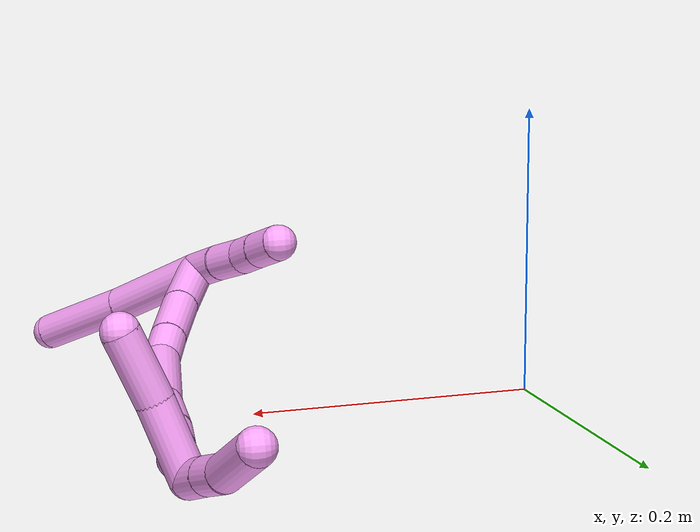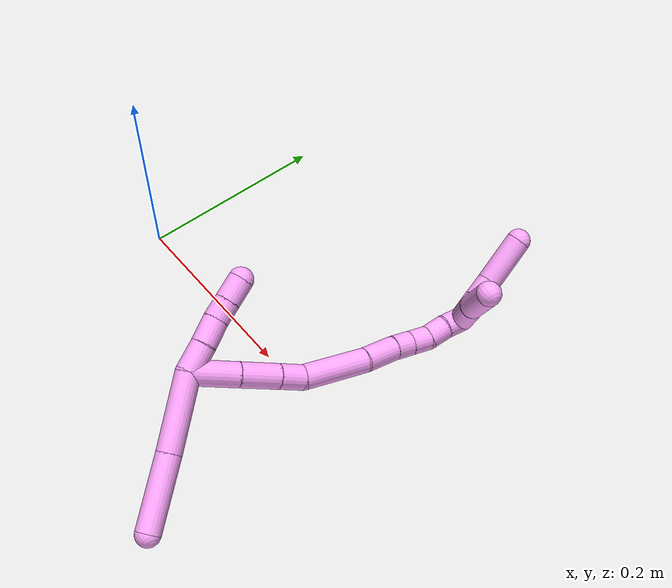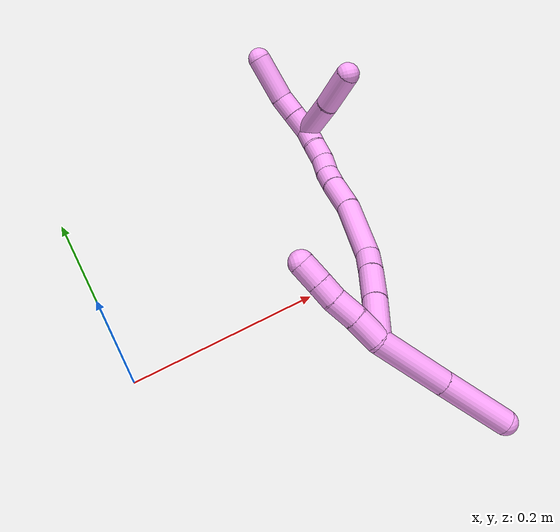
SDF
<sdf version="1.7">
 <world name="default">
  <model name="4">
   <static>0</static>
   <link name="4">
    <collision name="collision-cylinder-e_1_2_8">
     <pose>0.014723 -0.023016 0.026449 0.716113 0.39755 0.150464</pose>
     <geometry><cylinder><radius>0.0125</radius><length>0.076054</length></cylinder></geometry>
     <surface>
      <friction><ode><mu>1.16</mu><mu2>1.16</mu2><slip1>0</slip1><slip2>0</slip2></ode></friction>
      <contact><ode><kp>1e+06</kp><kd>1</kd><max_vel>0</max_vel><min_depth>0.001</min_depth></ode></contact>
     </surface>
    </collision>
    <visual name="visual-cylinder-e_1_2_8">
     <pose>0.014723 -0.023016 0.026449 0.716113 0.39755 0.150464</pose>
     <geometry><cylinder><radius>0.0125</radius><length>0.076054</length></cylinder></geometry>
     <material><ambient>1 0.65098 0.996078 1</ambient></material>
    </visual>
    <collision name="collision-cylinder-e_2_8_6">
     <pose>0.042234 -0.06913 0.078782 0.728564 0.353205 0.135885</pose>
     <geometry><cylinder><radius>0.0125</radius><length>0.073946</length></cylinder></geometry>
     <surface>
      <friction><ode><mu>1.16</mu><mu2>1.16</mu2><slip1>0</slip1><slip2>0</slip2></ode></friction>
      <contact><ode><kp>1e+06</kp><kd>1</kd><max_vel>0</max_vel><min_depth>0.001</min_depth></ode></contact>
     </surface>
    </collision>
    <visual name="visual-cylinder-e_2_8_6">
     <pose>0.042234 -0.06913 0.078782 0.728564 0.353205 0.135885</pose>
     <geometry><cylinder><radius>0.0125</radius><length>0.073946</length></cylinder></geometry>
     <material><ambient>1 0.65098 0.996078 1</ambient></material>
    </visual>
    <collision name="collision-cylinder-e_1_2_9">
     <pose>-0.004463 0.01161 -0.007521 -2.14565 -0.31206 0.563307</pose>
     <geometry><cylinder><radius>0.0125</radius><length>0.029071</length></cylinder></geometry>
     <surface>
      <friction><ode><mu>1.16</mu><mu2>1.16</mu2><slip1>0</slip1><slip2>0</slip2></ode></friction>
      <contact><ode><kp>1e+06</kp><kd>1</kd><max_vel>0</max_vel><min_depth>0.001</min_depth></ode></contact>
     </surface>
    </collision>
    <visual name="visual-cylinder-e_1_2_9">
     <pose>-0.004463 0.01161 -0.007521 -2.14565 -0.31206 0.563307</pose>
     <geometry><cylinder><radius>0.0125</radius><length>0.029071</length></cylinder></geometry>
     <material><ambient>1 0.65098 0.996078 1</ambient></material>
    </visual>
    <collision name="collision-cylinder-e_2_9_10">
     <pose>-0.012415 0.033284 -0.022721 -2.22255 -0.268973 0.533796</pose>
     <geometry><cylinder><radius>0.0125</radius><length>0.02626</length></cylinder></geometry>
     <surface>
      <friction><ode><mu>1.16</mu><mu2>1.16</mu2><slip1>0</slip1><slip2>0</slip2></ode></friction>
      <contact><ode><kp>1e+06</kp><kd>1</kd><max_vel>0</max_vel><min_depth>0.001</min_depth></ode></contact>
     </surface>
    </collision>
    <visual name="visual-cylinder-e_2_9_10">
     <pose>-0.012415 0.033284 -0.022721 -2.22255 -0.268973 0.533796</pose>
     <geometry><cylinder><radius>0.0125</radius><length>0.02626</length></cylinder></geometry>
     <material><ambient>1 0.65098 0.996078 1</ambient></material>
    </visual>
    <collision name="collision-cylinder-e_3_10_11">
     <pose>-0.019154 0.051841 -0.035167 -2.08232 -0.322054 0.541303</pose>
     <geometry><cylinder><radius>0.0125</radius><length>0.020537</length></cylinder></geometry>
     <surface>
      <friction><ode><mu>1.16</mu><mu2>1.16</mu2><slip1>0</slip1><slip2>0</slip2></ode></friction>
      <contact><ode><kp>1e+06</kp><kd>1</kd><max_vel>0</max_vel><min_depth>0.001</min_depth></ode></contact>
     </surface>
    </collision>
    <visual name="visual-cylinder-e_3_10_11">
     <pose>-0.019154 0.051841 -0.035167 -2.08232 -0.322054 0.541303</pose>
     <geometry><cylinder><radius>0.0125</radius><length>0.020537</length></cylinder></geometry>
     <material><ambient>1 0.65098 0.996078 1</ambient></material>
    </visual>
    <collision name="collision-cylinder-e_4_11_5">
     <pose>-0.026076 0.070293 -0.045674 -2.09357 -0.309232 0.526867</pose>
     <geometry><cylinder><radius>0.0125</radius><length>0.024132</length></cylinder></geometry>
     <surface>
      <friction><ode><mu>1.16</mu><mu2>1.16</mu2><slip1>0</slip1><slip2>0</slip2></ode></friction>
      <contact><ode><kp>1e+06</kp><kd>1</kd><max_vel>0</max_vel><min_depth>0.001</min_depth></ode></contact>
     </surface>
    </collision>
    <visual name="visual-cylinder-e_4_11_5">
     <pose>-0.026076 0.070293 -0.045674 -2.09357 -0.309232 0.526867</pose>
     <geometry><cylinder><radius>0.0125</radius><length>0.024132</length></cylinder></geometry>
     <material><ambient>1 0.65098 0.996078 1</ambient></material>
    </visual>
    <collision name="collision-cylinder-e_1_2_12">
     <pose>0.007954 0.021461 0.007671 -1.22753 0.33578 -0.237691</pose>
     <geometry><cylinder><radius>0.0125</radius><length>0.048278</length></cylinder></geometry>
     <surface>
      <friction><ode><mu>1.16</mu><mu2>1.16</mu2><slip1>0</slip1><slip2>0</slip2></ode></friction>
      <contact><ode><kp>1e+06</kp><kd>1</kd><max_vel>0</max_vel><min_depth>0.001</min_depth></ode></contact>
     </surface>
    </collision>
    <visual name="visual-cylinder-e_1_2_12">
     <pose>0.007954 0.021461 0.007671 -1.22753 0.33578 -0.237691</pose>
     <geometry><cylinder><radius>0.0125</radius><length>0.048278</length></cylinder></geometry>
     <material><ambient>1 0.65098 0.996078 1</ambient></material>
    </visual>
    <collision name="collision-cylinder-e_2_12_13">
     <pose>0.023183 0.060384 0.021004 -1.25721 0.377343 -0.27586</pose>
     <geometry><cylinder><radius>0.0125</radius><length>0.039491</length></cylinder></geometry>
     <surface>
      <friction><ode><mu>1.16</mu><mu2>1.16</mu2><slip1>0</slip1><slip2>0</slip2></ode></friction>
      <contact><ode><kp>1e+06</kp><kd>1</kd><max_vel>0</max_vel><min_depth>0.001</min_depth></ode></contact>
     </surface>
    </collision>
    <visual name="visual-cylinder-e_2_12_13">
     <pose>0.023183 0.060384 0.021004 -1.25721 0.377343 -0.27586</pose>
     <geometry><cylinder><radius>0.0125</radius><length>0.039491</length></cylinder></geometry>
     <material><ambient>1 0.65098 0.996078 1</ambient></material>
    </visual>
    <collision name="collision-cylinder-e_3_13_14">
     <pose>0.035676 0.088966 0.029944 -1.2842 0.422847 -0.318292</pose>
     <geometry><cylinder><radius>0.0125</radius><length>0.025428</length></cylinder></geometry>
     <surface>
      <friction><ode><mu>1.16</mu><mu2>1.16</mu2><slip1>0</slip1><slip2>0</slip2></ode></friction>
      <contact><ode><kp>1e+06</kp><kd>1</kd><max_vel>0</max_vel><min_depth>0.001</min_depth></ode></contact>
     </surface>
    </collision>
    <visual name="visual-cylinder-e_3_13_14">
     <pose>0.035676 0.088966 0.029944 -1.2842 0.422847 -0.318292</pose>
     <geometry><cylinder><radius>0.0125</radius><length>0.025428</length></cylinder></geometry>
     <material><ambient>1 0.65098 0.996078 1</ambient></material>
    </visual>
    <collision name="collision-cylinder-e_4_14_15">
     <pose>0.048006 0.132818 0.03507 -1.51438 0.213668 -0.202023</pose>
     <geometry><cylinder><radius>0.0125</radius><length>0.067092</length></cylinder></geometry>
     <surface>
      <friction><ode><mu>1.16</mu><mu2>1.16</mu2><slip1>0</slip1><slip2>0</slip2></ode></friction>
      <contact><ode><kp>1e+06</kp><kd>1</kd><max_vel>0</max_vel><min_depth>0.001</min_depth></ode></contact>
     </surface>
    </collision>
    <visual name="visual-cylinder-e_4_14_15">
     <pose>0.048006 0.132818 0.03507 -1.51438 0.213668 -0.202023</pose>
     <geometry><cylinder><radius>0.0125</radius><length>0.067092</length></cylinder></geometry>
     <material><ambient>1 0.65098 0.996078 1</ambient></material>
    </visual>
    <collision name="collision-cylinder-e_5_15_16">
     <pose>0.059699 0.182577 0.035178 -1.67268 0.261409 -0.289127</pose>
     <geometry><cylinder><radius>0.0125</radius><length>0.035438</length></cylinder></geometry>
     <surface>
      <friction><ode><mu>1.16</mu><mu2>1.16</mu2><slip1>0</slip1><slip2>0</slip2></ode></friction>
      <contact><ode><kp>1e+06</kp><kd>1</kd><max_vel>0</max_vel><min_depth>0.001</min_depth></ode></contact>
     </surface>
    </collision>
    <visual name="visual-cylinder-e_5_15_16">
     <pose>0.059699 0.182577 0.035178 -1.67268 0.261409 -0.289127</pose>
     <geometry><cylinder><radius>0.0125</radius><length>0.035438</length></cylinder></geometry>
     <material><ambient>1 0.65098 0.996078 1</ambient></material>
    </visual>
    <collision name="collision-cylinder-e_6_16_17">
     <pose>0.067324 0.209427 0.033289 -1.58588 0.300668 -0.305169</pose>
     <geometry><cylinder><radius>0.0125</radius><length>0.020567</length></cylinder></geometry>
     <surface>
      <friction><ode><mu>1.16</mu><mu2>1.16</mu2><slip1>0</slip1><slip2>0</slip2></ode></friction>
      <contact><ode><kp>1e+06</kp><kd>1</kd><max_vel>0</max_vel><min_depth>0.001</min_depth></ode></contact>
     </surface>
    </collision>
    <visual name="visual-cylinder-e_6_16_17">
     <pose>0.067324 0.209427 0.033289 -1.58588 0.300668 -0.305169</pose>
     <geometry><cylinder><radius>0.0125</radius><length>0.020567</length></cylinder></geometry>
     <material><ambient>1 0.65098 0.996078 1</ambient></material>
    </visual>
    <collision name="collision-cylinder-e_7_17_18">
     <pose>0.071726 0.229365 0.033906 -1.4953 0.132916 -0.123267</pose>
     <geometry><cylinder><radius>0.0125</radius><length>0.020474</length></cylinder></geometry>
     <surface>
      <friction><ode><mu>1.16</mu><mu2>1.16</mu2><slip1>0</slip1><slip2>0</slip2></ode></friction>
      <contact><ode><kp>1e+06</kp><kd>1</kd><max_vel>0</max_vel><min_depth>0.001</min_depth></ode></contact>
     </surface>
    </collision>
    <visual name="visual-cylinder-e_7_17_18">
     <pose>0.071726 0.229365 0.033906 -1.4953 0.132916 -0.123267</pose>
     <geometry><cylinder><radius>0.0125</radius><length>0.020474</length></cylinder></geometry>
     <material><ambient>1 0.65098 0.996078 1</ambient></material>
    </visual>
    <collision name="collision-cylinder-e_8_18_19">
     <pose>0.07292 0.250091 0.033131 -1.71492 -0.015123 0.017476</pose>
     <geometry><cylinder><radius>0.0125</radius><length>0.021441</length></cylinder></geometry>
     <surface>
      <friction><ode><mu>1.16</mu><mu2>1.16</mu2><slip1>0</slip1><slip2>0</slip2></ode></friction>
      <contact><ode><kp>1e+06</kp><kd>1</kd><max_vel>0</max_vel><min_depth>0.001</min_depth></ode></contact>
     </surface>
    </collision>
    <visual name="visual-cylinder-e_8_18_19">
     <pose>0.07292 0.250091 0.033131 -1.71492 -0.015123 0.017476</pose>
     <geometry><cylinder><radius>0.0125</radius><length>0.021441</length></cylinder></geometry>
     <material><ambient>1 0.65098 0.996078 1</ambient></material>
    </visual>
    <collision name="collision-cylinder-e_9_19_1">
     <pose>0.073986 0.271503 0.030892 -1.63546 0.112917 -0.120447</pose>
     <geometry><cylinder><radius>0.0125</radius><length>0.021792</length></cylinder></geometry>
     <surface>
      <friction><ode><mu>1.16</mu><mu2>1.16</mu2><slip1>0</slip1><slip2>0</slip2></ode></friction>
      <contact><ode><kp>1e+06</kp><kd>1</kd><max_vel>0</max_vel><min_depth>0.001</min_depth></ode></contact>
     </surface>
    </collision>
    <visual name="visual-cylinder-e_9_19_1">
     <pose>0.073986 0.271503 0.030892 -1.63546 0.112917 -0.120447</pose>
     <geometry><cylinder><radius>0.0125</radius><length>0.021792</length></cylinder></geometry>
     <material><ambient>1 0.65098 0.996078 1</ambient></material>
    </visual>
    <collision name="collision-cylinder-e_1_1_20">
     <pose>0.050492 0.280783 0.038857 0.174139 -1.22892 -0.123025</pose>
     <geometry><cylinder><radius>0.0125</radius><length>0.05248</length></cylinder></geometry>
     <surface>
      <friction><ode><mu>1.16</mu><mu2>1.16</mu2><slip1>0</slip1><slip2>0</slip2></ode></friction>
      <contact><ode><kp>1e+06</kp><kd>1</kd><max_vel>0</max_vel><min_depth>0.001</min_depth></ode></contact>
     </surface>
    </collision>
    <visual name="visual-cylinder-e_1_1_20">
     <pose>0.050492 0.280783 0.038857 0.174139 -1.22892 -0.123025</pose>
     <geometry><cylinder><radius>0.0125</radius><length>0.05248</length></cylinder></geometry>
     <material><ambient>1 0.65098 0.996078 1</ambient></material>
    </visual>
    <collision name="collision-cylinder-e_2_20_4">
     <pose>0.003798 0.280585 0.056463 -0.147257 -1.1805 0.098749</pose>
     <geometry><cylinder><radius>0.0125</radius><length>0.04752</length></cylinder></geometry>
     <surface>
      <friction><ode><mu>1.16</mu><mu2>1.16</mu2><slip1>0</slip1><slip2>0</slip2></ode></friction>
      <contact><ode><kp>1e+06</kp><kd>1</kd><max_vel>0</max_vel><min_depth>0.001</min_depth></ode></contact>
     </surface>
    </collision>
    <visual name="visual-cylinder-e_2_20_4">
     <pose>0.003798 0.280585 0.056463 -0.147257 -1.1805 0.098749</pose>
     <geometry><cylinder><radius>0.0125</radius><length>0.04752</length></cylinder></geometry>
     <material><ambient>1 0.65098 0.996078 1</ambient></material>
    </visual>
    <collision name="collision-cylinder-e_1_1_21">
     <pose>0.071576 0.293171 0.025318 -1.99261 -0.296475 0.453453</pose>
     <geometry><cylinder><radius>0.0125</radius><length>0.024901</length></cylinder></geometry>
     <surface>
      <friction><ode><mu>1.16</mu><mu2>1.16</mu2><slip1>0</slip1><slip2>0</slip2></ode></friction>
      <contact><ode><kp>1e+06</kp><kd>1</kd><max_vel>0</max_vel><min_depth>0.001</min_depth></ode></contact>
     </surface>
    </collision>
    <visual name="visual-cylinder-e_1_1_21">
     <pose>0.071576 0.293171 0.025318 -1.99261 -0.296475 0.453453</pose>
     <geometry><cylinder><radius>0.0125</radius><length>0.024901</length></cylinder></geometry>
     <material><ambient>1 0.65098 0.996078 1</ambient></material>
    </visual>
    <collision name="collision-cylinder-e_2_21_22">
     <pose>0.064857 0.314264 0.015967 -1.98322 -0.269269 0.408455</pose>
     <geometry><cylinder><radius>0.0125</radius><length>0.023168</length></cylinder></geometry>
     <surface>
      <friction><ode><mu>1.16</mu><mu2>1.16</mu2><slip1>0</slip1><slip2>0</slip2></ode></friction>
      <contact><ode><kp>1e+06</kp><kd>1</kd><max_vel>0</max_vel><min_depth>0.001</min_depth></ode></contact>
     </surface>
    </collision>
    <visual name="visual-cylinder-e_2_21_22">
     <pose>0.064857 0.314264 0.015967 -1.98322 -0.269269 0.408455</pose>
     <geometry><cylinder><radius>0.0125</radius><length>0.023168</length></cylinder></geometry>
     <material><ambient>1 0.65098 0.996078 1</ambient></material>
    </visual>
    <collision name="collision-cylinder-e_3_22_3">
     <pose>0.049182 0.345736 0.003466 -1.932 -0.506369 0.716366</pose>
     <geometry><cylinder><radius>0.0125</radius><length>0.051931</length></cylinder></geometry>
     <surface>
      <friction><ode><mu>1.16</mu><mu2>1.16</mu2><slip1>0</slip1><slip2>0</slip2></ode></friction>
      <contact><ode><kp>1e+06</kp><kd>1</kd><max_vel>0</max_vel><min_depth>0.001</min_depth></ode></contact>
     </surface>
    </collision>
    <visual name="visual-cylinder-e_3_22_3">
     <pose>0.049182 0.345736 0.003466 -1.932 -0.506369 0.716366</pose>
     <geometry><cylinder><radius>0.0125</radius><length>0.051931</length></cylinder></geometry>
     <material><ambient>1 0.65098 0.996078 1</ambient></material>
    </visual>
    <collision name="collision-sphere-3">
     <pose>0.036589 0.366978 -0.004559 0 -0 0</pose>
     <geometry><sphere><radius>0.0125</radius></sphere></geometry>
     <surface>
      <friction><ode><mu>1.16</mu><mu2>1.16</mu2><slip1>0</slip1><slip2>0</slip2></ode></friction>
      <contact><ode><kp>1e+06</kp><kd>1</kd><max_vel>0</max_vel><min_depth>0.001</min_depth></ode></contact>
     </surface>
    </collision>
    <visual name="visual-sphere-3">
     <pose>0.036589 0.366978 -0.004559 0 -0 0</pose>
     <geometry><sphere><radius>0.0125</radius></sphere></geometry>
     <material><ambient>1 0.65098 0.996078 1</ambient></material>
    </visual>
    <collision name="collision-sphere-22">
     <pose>0.061776 0.324494 0.011491 0 -0 0</pose>
     <geometry><sphere><radius>0.0125</radius></sphere></geometry>
     <surface>
      <friction><ode><mu>1.16</mu><mu2>1.16</mu2><slip1>0</slip1><slip2>0</slip2></ode></friction>
      <contact><ode><kp>1e+06</kp><kd>1</kd><max_vel>0</max_vel><min_depth>0.001</min_depth></ode></contact>
     </surface>
    </collision>
    <visual name="visual-sphere-22">
     <pose>0.061776 0.324494 0.011491 0 -0 0</pose>
     <geometry><sphere><radius>0.0125</radius></sphere></geometry>
     <material><ambient>1 0.65098 0.996078 1</ambient></material>
    </visual>
    <collision name="collision-sphere-21">
     <pose>0.067939 0.304034 0.020443 0 -0 0</pose>
     <geometry><sphere><radius>0.0125</radius></sphere></geometry>
     <surface>
      <friction><ode><mu>1.16</mu><mu2>1.16</mu2><slip1>0</slip1><slip2>0</slip2></ode></friction>
      <contact><ode><kp>1e+06</kp><kd>1</kd><max_vel>0</max_vel><min_depth>0.001</min_depth></ode></contact>
     </surface>
    </collision>
    <visual name="visual-sphere-21">
     <pose>0.067939 0.304034 0.020443 0 -0 0</pose>
     <geometry><sphere><radius>0.0125</radius></sphere></geometry>
     <material><ambient>1 0.65098 0.996078 1</ambient></material>
    </visual>
    <collision name="collision-sphere-4">
     <pose>-0.018175 0.281911 0.065405 0 -0 0</pose>
     <geometry><sphere><radius>0.0125</radius></sphere></geometry>
     <surface>
      <friction><ode><mu>1.16</mu><mu2>1.16</mu2><slip1>0</slip1><slip2>0</slip2></ode></friction>
      <contact><ode><kp>1e+06</kp><kd>1</kd><max_vel>0</max_vel><min_depth>0.001</min_depth></ode></contact>
     </surface>
    </collision>
    <visual name="visual-sphere-4">
     <pose>-0.018175 0.281911 0.065405 0 -0 0</pose>
     <geometry><sphere><radius>0.0125</radius></sphere></geometry>
     <material><ambient>1 0.65098 0.996078 1</ambient></material>
    </visual>
    <collision name="collision-sphere-20">
     <pose>0.025771 0.279259 0.047521 0 -0 0</pose>
     <geometry><sphere><radius>0.0125</radius></sphere></geometry>
     <surface>
      <friction><ode><mu>1.16</mu><mu2>1.16</mu2><slip1>0</slip1><slip2>0</slip2></ode></friction>
      <contact><ode><kp>1e+06</kp><kd>1</kd><max_vel>0</max_vel><min_depth>0.001</min_depth></ode></contact>
     </surface>
    </collision>
    <visual name="visual-sphere-20">
     <pose>0.025771 0.279259 0.047521 0 -0 0</pose>
     <geometry><sphere><radius>0.0125</radius></sphere></geometry>
     <material><ambient>1 0.65098 0.996078 1</ambient></material>
    </visual>
    <collision name="collision-sphere-11">
     <pose>-0.022404 0.060334 -0.039935 0 -0 0</pose>
     <geometry><sphere><radius>0.0125</radius></sphere></geometry>
     <surface>
      <friction><ode><mu>1.16</mu><mu2>1.16</mu2><slip1>0</slip1><slip2>0</slip2></ode></friction>
      <contact><ode><kp>1e+06</kp><kd>1</kd><max_vel>0</max_vel><min_depth>0.001</min_depth></ode></contact>
     </surface>
    </collision>
    <visual name="visual-sphere-11">
     <pose>-0.022404 0.060334 -0.039935 0 -0 0</pose>
     <geometry><sphere><radius>0.0125</radius></sphere></geometry>
     <material><ambient>1 0.65098 0.996078 1</ambient></material>
    </visual>
    <collision name="collision-sphere-10">
     <pose>-0.015904 0.043347 -0.030399 0 -0 0</pose>
     <geometry><sphere><radius>0.0125</radius></sphere></geometry>
     <surface>
      <friction><ode><mu>1.16</mu><mu2>1.16</mu2><slip1>0</slip1><slip2>0</slip2></ode></friction>
      <contact><ode><kp>1e+06</kp><kd>1</kd><max_vel>0</max_vel><min_depth>0.001</min_depth></ode></contact>
     </surface>
    </collision>
    <visual name="visual-sphere-10">
     <pose>-0.015904 0.043347 -0.030399 0 -0 0</pose>
     <geometry><sphere><radius>0.0125</radius></sphere></geometry>
     <material><ambient>1 0.65098 0.996078 1</ambient></material>
    </visual>
    <collision name="collision-sphere-6">
     <pose>0.055024 -0.092227 0.104665 0 -0 0</pose>
     <geometry><sphere><radius>0.0125</radius></sphere></geometry>
     <surface>
      <friction><ode><mu>1.16</mu><mu2>1.16</mu2><slip1>0</slip1><slip2>0</slip2></ode></friction>
      <contact><ode><kp>1e+06</kp><kd>1</kd><max_vel>0</max_vel><min_depth>0.001</min_depth></ode></contact>
     </surface>
    </collision>
    <visual name="visual-sphere-6">
     <pose>0.055024 -0.092227 0.104665 0 -0 0</pose>
     <geometry><sphere><radius>0.0125</radius></sphere></geometry>
     <material><ambient>1 0.65098 0.996078 1</ambient></material>
    </visual>
    <collision name="collision-sphere-9">
     <pose>-0.008925 0.02322 -0.015043 0 -0 0</pose>
     <geometry><sphere><radius>0.0125</radius></sphere></geometry>
     <surface>
      <friction><ode><mu>1.16</mu><mu2>1.16</mu2><slip1>0</slip1><slip2>0</slip2></ode></friction>
      <contact><ode><kp>1e+06</kp><kd>1</kd><max_vel>0</max_vel><min_depth>0.001</min_depth></ode></contact>
     </surface>
    </collision>
    <visual name="visual-sphere-9">
     <pose>-0.008925 0.02322 -0.015043 0 -0 0</pose>
     <geometry><sphere><radius>0.0125</radius></sphere></geometry>
     <material><ambient>1 0.65098 0.996078 1</ambient></material>
    </visual>
    <collision name="collision-sphere-2">
     <geometry><sphere><radius>0.0125</radius></sphere></geometry>
     <surface>
      <friction><ode><mu>1.16</mu><mu2>1.16</mu2><slip1>0</slip1><slip2>0</slip2></ode></friction>
      <contact><ode><kp>1e+06</kp><kd>1</kd><max_vel>0</max_vel><min_depth>0.001</min_depth></ode></contact>
     </surface>
    </collision>
    <visual name="visual-sphere-2">
     <geometry><sphere><radius>0.0125</radius></sphere></geometry>
     <material><ambient>1 0.65098 0.996078 1</ambient></material>
    </visual>
    <collision name="collision-sphere-19">
     <pose>0.072758 0.260699 0.031592 0 -0 0</pose>
     <geometry><sphere><radius>0.0125</radius></sphere></geometry>
     <surface>
      <friction><ode><mu>1.16</mu><mu2>1.16</mu2><slip1>0</slip1><slip2>0</slip2></ode></friction>
      <contact><ode><kp>1e+06</kp><kd>1</kd><max_vel>0</max_vel><min_depth>0.001</min_depth></ode></contact>
     </surface>
    </collision>
    <visual name="visual-sphere-19">
     <pose>0.072758 0.260699 0.031592 0 -0 0</pose>
     <geometry><sphere><radius>0.0125</radius></sphere></geometry>
     <material><ambient>1 0.65098 0.996078 1</ambient></material>
    </visual>
    <collision name="collision-sphere-8">
     <pose>0.029445 -0.046033 0.052898 0 -0 0</pose>
     <geometry><sphere><radius>0.0125</radius></sphere></geometry>
     <surface>
      <friction><ode><mu>1.16</mu><mu2>1.16</mu2><slip1>0</slip1><slip2>0</slip2></ode></friction>
      <contact><ode><kp>1e+06</kp><kd>1</kd><max_vel>0</max_vel><min_depth>0.001</min_depth></ode></contact>
     </surface>
    </collision>
    <visual name="visual-sphere-8">
     <pose>0.029445 -0.046033 0.052898 0 -0 0</pose>
     <geometry><sphere><radius>0.0125</radius></sphere></geometry>
     <material><ambient>1 0.65098 0.996078 1</ambient></material>
    </visual>
    <collision name="collision-sphere-5">
     <pose>-0.029748 0.080251 -0.051412 0 -0 0</pose>
     <geometry><sphere><radius>0.0125</radius></sphere></geometry>
     <surface>
      <friction><ode><mu>1.16</mu><mu2>1.16</mu2><slip1>0</slip1><slip2>0</slip2></ode></friction>
      <contact><ode><kp>1e+06</kp><kd>1</kd><max_vel>0</max_vel><min_depth>0.001</min_depth></ode></contact>
     </surface>
    </collision>
    <visual name="visual-sphere-5">
     <pose>-0.029748 0.080251 -0.051412 0 -0 0</pose>
     <geometry><sphere><radius>0.0125</radius></sphere></geometry>
     <material><ambient>1 0.65098 0.996078 1</ambient></material>
    </visual>
    <collision name="collision-sphere-12">
     <pose>0.015908 0.042923 0.015341 0 -0 0</pose>
     <geometry><sphere><radius>0.0125</radius></sphere></geometry>
     <surface>
      <friction><ode><mu>1.16</mu><mu2>1.16</mu2><slip1>0</slip1><slip2>0</slip2></ode></friction>
      <contact><ode><kp>1e+06</kp><kd>1</kd><max_vel>0</max_vel><min_depth>0.001</min_depth></ode></contact>
     </surface>
    </collision>
    <visual name="visual-sphere-12">
     <pose>0.015908 0.042923 0.015341 0 -0 0</pose>
     <geometry><sphere><radius>0.0125</radius></sphere></geometry>
     <material><ambient>1 0.65098 0.996078 1</ambient></material>
    </visual>
    <collision name="collision-sphere-13">
     <pose>0.030458 0.077845 0.026666 0 -0 0</pose>
     <geometry><sphere><radius>0.0125</radius></sphere></geometry>
     <surface>
      <friction><ode><mu>1.16</mu><mu2>1.16</mu2><slip1>0</slip1><slip2>0</slip2></ode></friction>
      <contact><ode><kp>1e+06</kp><kd>1</kd><max_vel>0</max_vel><min_depth>0.001</min_depth></ode></contact>
     </surface>
    </collision>
    <visual name="visual-sphere-13">
     <pose>0.030458 0.077845 0.026666 0 -0 0</pose>
     <geometry><sphere><radius>0.0125</radius></sphere></geometry>
     <material><ambient>1 0.65098 0.996078 1</ambient></material>
    </visual>
    <collision name="collision-sphere-14">
     <pose>0.040893 0.100087 0.033221 0 -0 0</pose>
     <geometry><sphere><radius>0.0125</radius></sphere></geometry>
     <surface>
      <friction><ode><mu>1.16</mu><mu2>1.16</mu2><slip1>0</slip1><slip2>0</slip2></ode></friction>
      <contact><ode><kp>1e+06</kp><kd>1</kd><max_vel>0</max_vel><min_depth>0.001</min_depth></ode></contact>
     </surface>
    </collision>
    <visual name="visual-sphere-14">
     <pose>0.040893 0.100087 0.033221 0 -0 0</pose>
     <geometry><sphere><radius>0.0125</radius></sphere></geometry>
     <material><ambient>1 0.65098 0.996078 1</ambient></material>
    </visual>
    <collision name="collision-sphere-15">
     <pose>0.05512 0.165549 0.036919 0 -0 0</pose>
     <geometry><sphere><radius>0.0125</radius></sphere></geometry>
     <surface>
      <friction><ode><mu>1.16</mu><mu2>1.16</mu2><slip1>0</slip1><slip2>0</slip2></ode></friction>
      <contact><ode><kp>1e+06</kp><kd>1</kd><max_vel>0</max_vel><min_depth>0.001</min_depth></ode></contact>
     </surface>
    </collision>
    <visual name="visual-sphere-15">
     <pose>0.05512 0.165549 0.036919 0 -0 0</pose>
     <geometry><sphere><radius>0.0125</radius></sphere></geometry>
     <material><ambient>1 0.65098 0.996078 1</ambient></material>
    </visual>
    <collision name="collision-sphere-16">
     <pose>0.064278 0.199606 0.033437 0 -0 0</pose>
     <geometry><sphere><radius>0.0125</radius></sphere></geometry>
     <surface>
      <friction><ode><mu>1.16</mu><mu2>1.16</mu2><slip1>0</slip1><slip2>0</slip2></ode></friction>
      <contact><ode><kp>1e+06</kp><kd>1</kd><max_vel>0</max_vel><min_depth>0.001</min_depth></ode></contact>
     </surface>
    </collision>
    <visual name="visual-sphere-16">
     <pose>0.064278 0.199606 0.033437 0 -0 0</pose>
     <geometry><sphere><radius>0.0125</radius></sphere></geometry>
     <material><ambient>1 0.65098 0.996078 1</ambient></material>
    </visual>
    <collision name="collision-sphere-17">
     <pose>0.070369 0.219248 0.03314 0 -0 0</pose>
     <geometry><sphere><radius>0.0125</radius></sphere></geometry>
     <surface>
      <friction><ode><mu>1.16</mu><mu2>1.16</mu2><slip1>0</slip1><slip2>0</slip2></ode></friction>
      <contact><ode><kp>1e+06</kp><kd>1</kd><max_vel>0</max_vel><min_depth>0.001</min_depth></ode></contact>
     </surface>
    </collision>
    <visual name="visual-sphere-17">
     <pose>0.070369 0.219248 0.03314 0 -0 0</pose>
     <geometry><sphere><radius>0.0125</radius></sphere></geometry>
     <material><ambient>1 0.65098 0.996078 1</ambient></material>
    </visual>
    <collision name="collision-sphere-18">
     <pose>0.073083 0.239483 0.034671 0 -0 0</pose>
     <geometry><sphere><radius>0.0125</radius></sphere></geometry>
     <surface>
      <friction><ode><mu>1.16</mu><mu2>1.16</mu2><slip1>0</slip1><slip2>0</slip2></ode></friction>
      <contact><ode><kp>1e+06</kp><kd>1</kd><max_vel>0</max_vel><min_depth>0.001</min_depth></ode></contact>
     </surface>
    </collision>
    <visual name="visual-sphere-18">
     <pose>0.073083 0.239483 0.034671 0 -0 0</pose>
     <geometry><sphere><radius>0.0125</radius></sphere></geometry>
     <material><ambient>1 0.65098 0.996078 1</ambient></material>
    </visual>
    <collision name="collision-sphere-1">
     <pose>0.075214 0.282307 0.030193 0 -0 0</pose>
     <geometry><sphere><radius>0.0125</radius></sphere></geometry>
     <surface>
      <friction><ode><mu>1.16</mu><mu2>1.16</mu2><slip1>0</slip1><slip2>0</slip2></ode></friction>
      <contact><ode><kp>1e+06</kp><kd>1</kd><max_vel>0</max_vel><min_depth>0.001</min_depth></ode></contact>
     </surface>
    </collision>
    <visual name="visual-sphere-1">
     <pose>0.075214 0.282307 0.030193 0 -0 0</pose>
     <geometry><sphere><radius>0.0125</radius></sphere></geometry>
     <material><ambient>1 0.65098 0.996078 1</ambient></material>
    </visual>
    <inertial>
     <pose>0.033341 0.132081 0.025898 0 -0 0</pose>
     <mass>0.75</mass>
     <inertia>
      <ixx>0.000164</ixx>
      <ixy>0</ixy>
      <ixz>0</ixz>
      <iyy>0.00013</iyy>
      <iyz>0</iyz>
      <izz>-3.4e-05</izz>
     </inertia>
    </inertial>
   </link>
   <pose>0.212049 -0.096741 0.080628 2.40104 1.51047 2.20297</pose>
  </model>
 </world>
</sdf>
